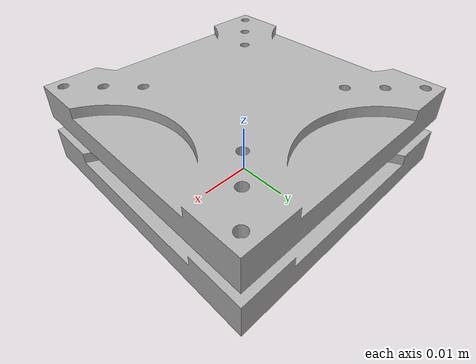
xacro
<?xml version="1.0"?>
<robot xmlns:xacro="http://www.ros.org/wiki/xacro" name="stage">

    <xacro:arg name="hardware_interface" default="PositionJointInterface"/>
    <xacro:arg name="initial_z" default="0.0"/>

    <link name="base_link"/>

    <xacro:include filename="$(find micro_resector_description)/urdf/linear_stage.xacro"/>

    <xacro:arg name="prefix" default="x"/>
    <xacro:arg name="hardware_interface" default="PositionJointInterface"/>

    <joint name="x_linear_stage_world_joint" type="fixed">
        <parent link="base_link"/>
        <child link="x_base_link"/>
        <origin xyz="0.0 0.0 0.00" rpy="${pi/2} 0.0 0.0"/>
    </joint>

    <xacro:linear_stage hardware_interface="$(arg hardware_interface)" prefix="x">
    </xacro:linear_stage>

    <joint name="y_linear_stage_world_joint" type="fixed">
        <parent link="x_stage_link"/>
        <child link="y_base_link"/>
        <origin xyz="0.0 0.0 0.00" rpy="0.0 ${pi/2} 0.0"/>
    </joint>

    <xacro:linear_stage hardware_interface="$(arg hardware_interface)" prefix="y">
    </xacro:linear_stage>

</robot>

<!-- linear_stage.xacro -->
<robot name="linear_stage" xmlns:xacro="http://www.ros.org/wiki/xacro">

<xacro:include filename="$(find micro_resector_description)/urdf/materials.xacro" />
<xacro:include filename="$(find micro_resector_description)/urdf/linear_stage.trans" />
<xacro:include filename="$(find micro_resector_description)/urdf/linear_stage.gazebo" />

<xacro:macro name="linear_stage" params="prefix hardware_interface">
  <link name="${prefix}_base_link">
    <inertial>
      <origin rpy="0 0 0" xyz="0.0 0.0015 0.0"/>
      <mass value="0.058579061972031825"/>
      <inertia ixx="1.2e-05" ixy="-0.0" ixz="-0.0" iyy="2.4e-05" iyz="0.0" izz="1.2e-05"/>
    </inertial>
    <visual>
      <origin rpy="0 0 0" xyz="0 0.0095 0"/>
      <geometry>
        <mesh filename="package://micro_resector_description/meshes/lin_base_link.stl" scale="0.001 0.001 0.001"/>
      </geometry>
      <material name="silver"/>
    </visual>
    <collision>
      <origin rpy="0 0 0" xyz="0 0.0095 0"/>
      <geometry>
        <mesh filename="package://micro_resector_description/meshes/lin_base_link.stl" scale="0.001 0.001 0.001"/>
      </geometry>
    </collision>
  </link>

  <link name="${prefix}_stage_link">
    <inertial>
      <origin rpy="0 0 0" xyz="0.0 -0.00028 0.0"/>
      <mass value="0.11339718225370693"/>
      <inertia ixx="2.3e-05" ixy="0.0" ixz="0.0" iyy="4.6e-05" iyz="0.0" izz="2.3e-05"/>
    </inertial>
    <visual>
      <origin rpy="0 0 0" xyz="0.0 0.0 -0.0"/>
      <geometry>
        <mesh filename="package://micro_resector_description/meshes/lin_stage_link.stl" scale="0.001 0.001 0.001"/>
      </geometry>
      <material name="silver"/>
    </visual>
    <collision>
      <origin rpy="0 0 0" xyz="0.0 0.0 -0.0"/>
      <geometry>
        <mesh filename="package://micro_resector_description/meshes/lin_stage_link.stl" scale="0.001 0.001 0.001"/>
      </geometry>
    </collision>
  </link>

  <joint name="${prefix}_joint" type="prismatic">
    <origin rpy="0 0 0" xyz="0.0 0.0095 0.0"/>
    <parent link="${prefix}_base_link"/>
    <child link="${prefix}_stage_link"/>
    <axis xyz="1 0.0 0.0"/>
    <limit effort="100" lower="-0.015" upper="0.015" velocity="0.0045"/>
  </joint>

  <xacro:linear_stage_gazebo prefix="$(arg prefix)"/>
  <xacro:linear_stage_transmission prefix="$(arg prefix)" hardware_interface="${hardware_interface}"/>

</xacro:macro>

</robot>

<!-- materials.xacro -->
<robot name="linear_stage" xmlns:xacro="http://www.ros.org/wiki/xacro" >

<material name="silver">
  <color rgba="0.700 0.700 0.700 1.000"/>
</material>

</robot>

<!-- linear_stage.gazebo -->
<robot xmlns:xacro="http://www.ros.org/wiki/xacro" >

<xacro:property name="body_color" value="Gazebo/Silver" />

<xacro:macro name="linear_stage_gazebo" params="prefix">
  <gazebo>
    <plugin filename="libgazebo_ros_control.so" name="control"/>
  </gazebo>
  <gazebo reference="$(arg prefix)_base_link">
    <material>${body_color}</material>
    <mu1>0.2</mu1>
    <mu2>0.2</mu2>
    <selfCollide>true</selfCollide>
    <gravity>true</gravity>
  </gazebo>

  <gazebo reference="$(arg prefix)_stage_link">
    <material>${body_color}</material>
    <mu1>0.2</mu1>
    <mu2>0.2</mu2>
    <selfCollide>true</selfCollide>
  </gazebo>
</xacro:macro>
</robot>
